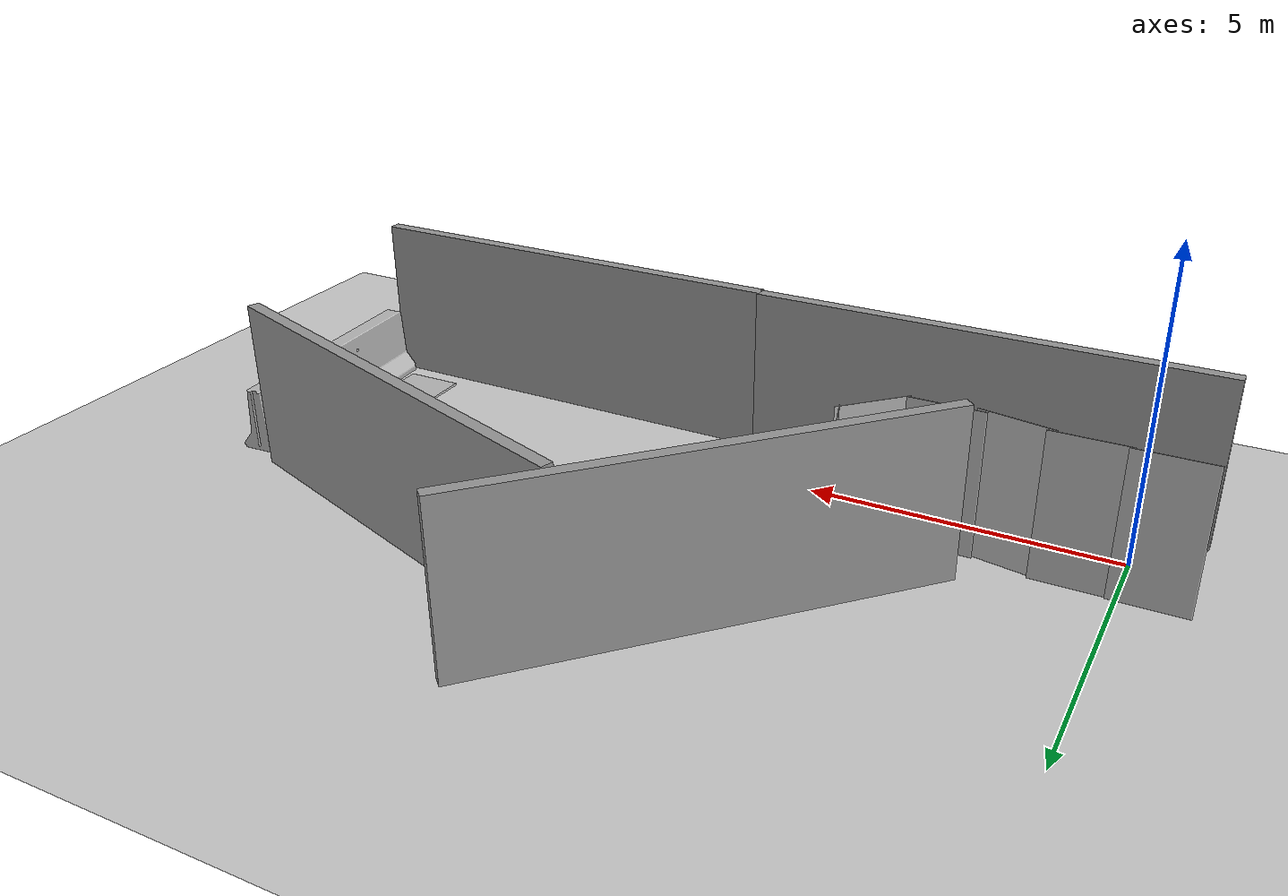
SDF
<sdf version="1.6">
 <world name="default">
  <light name="sun" type="directional">
   <pose>0 0 10 0 -0 0</pose>
   <diffuse>0.8 0.8 0.8 1</diffuse>
   <specular>0.2 0.2 0.2 1</specular>
   <attenuation>
    <range>1000</range>
    <constant>0.9</constant>
    <linear>0.01</linear>
    <quadratic>0.001</quadratic>
   </attenuation>
   <direction>-0.5 0.1 -0.9</direction>
  </light>
  <model name="ground_plane">
   <static>1</static>
   <link name="link">
    <collision name="collision">
     <geometry><plane><normal>0 0 1</normal><size>100 100</size></plane></geometry>
     <surface>
      <contact><collide_bitmask>65535</collide_bitmask></contact>
      <friction><ode><mu>100</mu><mu2>50</mu2></ode></friction>
     </surface>
    </collision>
    <visual name="visual">
     <cast_shadows>0</cast_shadows>
     <geometry><plane><normal>0 0 1</normal><size>100 100</size></plane></geometry>
     <material>
      <script><uri>file://media/materials/scripts/gazebo.material</uri><name>Gazebo/Grey</name></script>
     </material>
    </visual>
   </link>
  </model>
  <gravity>0 0 -9.8</gravity>
  <magnetic_field>6e-06 2.3e-05 -4.2e-05</magnetic_field>
  <atmosphere type="adiabatic"/>
  <physics name="default_physics" default="0" type="ode">
   <max_step_size>0.001</max_step_size>
   <real_time_factor>1</real_time_factor>
   <real_time_update_rate>1000</real_time_update_rate>
  </physics>
  <scene><ambient>0.4 0.4 0.4 1</ambient><background>0.7 0.7 0.7 1</background><shadows>1</shadows></scene>
  <spherical_coordinates>
   <surface_model>EARTH_WGS84</surface_model>
   <latitude_deg>0</latitude_deg>
   <longitude_deg>0</longitude_deg>
   <elevation>0</elevation>
   <heading_deg>0</heading_deg>
  </spherical_coordinates>
  <model name="cafe_table">
   <static>1</static>
   <link name="link">
    <collision name="surface">
     <pose>0 0 0.755 0 -0 0</pose>
     <geometry><box><size>0.913 0.913 0.04</size></box></geometry>
    </collision>
    <collision name="column">
     <pose>0 0 0.37 0 -0 0</pose>
     <geometry><box><size>0.042 0.042 0.74</size></box></geometry>
    </collision>
    <collision name="base">
     <pose>0 0 0.02 0 -0 0</pose>
     <geometry><box><size>0.56 0.56 0.04</size></box></geometry>
    </collision>
    <visual name="visual">
     <geometry><mesh><uri>model://cafe_table/meshes/cafe_table.dae</uri></mesh></geometry>
    </visual>
   </link>
   <pose>12 1 0 0 -0 0</pose>
  </model>
  <model name="grey_wall">
   <static>1</static>
   <link name="link">
    <pose>0 0 1.4 0 -0 0</pose>
    <collision name="collision"><geometry><box><size>7.5 0.2 2.8</size></box></geometry></collision>
    <visual name="visual">
     <cast_shadows>0</cast_shadows>
     <geometry><box><size>7.5 0.2 2.8</size></box></geometry>
     <material>
      <script>
       <uri>model://grey_wall/materials/scripts</uri>
       <uri>model://grey_wall/materials/textures</uri>
       <name>vrc/grey_wall</name>
      </script>
     </material>
    </visual>
   </link>
   <pose>2.75291 -1.08985 0 0 -0 0</pose>
  </model>
  <model name="grey_wall_clone">
   <static>1</static>
   <link name="link">
    <pose>0 0 1.4 0 -0 0</pose>
    <collision name="collision"><geometry><box><size>7.5 0.2 2.8</size></box></geometry></collision>
    <visual name="visual">
     <cast_shadows>0</cast_shadows>
     <geometry><box><size>7.5 0.2 2.8</size></box></geometry>
     <material>
      <script>
       <uri>model://grey_wall/materials/scripts</uri>
       <uri>model://grey_wall/materials/textures</uri>
       <name>vrc/grey_wall</name>
      </script>
     </material>
    </visual>
   </link>
   <pose>10.2216 -1.15909 0 0 -0 3.13344</pose>
  </model>
  <model name="nist_maze_wall_240">
   <static>1</static>
   <link name="nist__maze_wall_240_link">
    <collision name="collision">
     <geometry>
      <mesh><uri>model://nist_maze_wall_240/meshes/nist_maze_wall_240.dae</uri><scale>1 1 1</scale></mesh>
     </geometry>
    </collision>
    <visual name="visual">
     <geometry>
      <mesh><uri>model://nist_maze_wall_240/meshes/nist_maze_wall_240.dae</uri><scale>1 1 1</scale></mesh>
     </geometry>
    </visual>
   </link>
   <pose>-0.45134 0.409954 0 0 -0 0</pose>
  </model>
  <model name="nist_maze_wall_240_0">
   <static>1</static>
   <link name="nist__maze_wall_240_link">
    <collision name="collision">
     <geometry>
      <mesh><uri>model://nist_maze_wall_240/meshes/nist_maze_wall_240.dae</uri><scale>1 1 1</scale></mesh>
     </geometry>
    </collision>
    <visual name="visual">
     <geometry>
      <mesh><uri>model://nist_maze_wall_240/meshes/nist_maze_wall_240.dae</uri><scale>1 1 1</scale></mesh>
     </geometry>
    </visual>
   </link>
   <pose>0.664319 0.383461 0 0 -0 0</pose>
  </model>
  <model name="nist_maze_wall_240_1">
   <static>1</static>
   <link name="nist__maze_wall_240_link">
    <collision name="collision">
     <geometry>
      <mesh><uri>model://nist_maze_wall_240/meshes/nist_maze_wall_240.dae</uri><scale>1 1 1</scale></mesh>
     </geometry>
    </collision>
    <visual name="visual">
     <geometry>
      <mesh><uri>model://nist_maze_wall_240/meshes/nist_maze_wall_240.dae</uri><scale>1 1 1</scale></mesh>
     </geometry>
    </visual>
   </link>
   <pose>1.60536 0.249326 0 0 0 -0.172368</pose>
  </model>
  <model name="nist_maze_wall_240_2">
   <static>1</static>
   <link name="nist__maze_wall_240_link">
    <collision name="collision">
     <geometry>
      <mesh><uri>model://nist_maze_wall_240/meshes/nist_maze_wall_240.dae</uri><scale>1 1 1</scale></mesh>
     </geometry>
    </collision>
    <visual name="visual">
     <geometry>
      <mesh><uri>model://nist_maze_wall_240/meshes/nist_maze_wall_240.dae</uri><scale>1 1 1</scale></mesh>
     </geometry>
    </visual>
   </link>
   <pose>2.72283 0.223769 0 0 -0 0</pose>
  </model>
  <model name="nist_maze_wall_240_3">
   <static>1</static>
   <link name="nist__maze_wall_240_link">
    <collision name="collision">
     <geometry>
      <mesh><uri>model://nist_maze_wall_240/meshes/nist_maze_wall_240.dae</uri><scale>1 1 1</scale></mesh>
     </geometry>
    </collision>
    <visual name="visual">
     <geometry>
      <mesh><uri>model://nist_maze_wall_240/meshes/nist_maze_wall_240.dae</uri><scale>1 1 1</scale></mesh>
     </geometry>
    </visual>
   </link>
   <pose>4.11258 0.776914 0 0 -0 0.787103</pose>
  </model>
  <model name="nist_maze_wall_240_4">
   <static>1</static>
   <link name="nist__maze_wall_240_link">
    <collision name="collision">
     <geometry>
      <mesh><uri>model://nist_maze_wall_240/meshes/nist_maze_wall_240.dae</uri><scale>1 1 1</scale></mesh>
     </geometry>
    </collision>
    <visual name="visual">
     <geometry>
      <mesh><uri>model://nist_maze_wall_240/meshes/nist_maze_wall_240.dae</uri><scale>1 1 1</scale></mesh>
     </geometry>
    </visual>
   </link>
   <pose>3.32677 1.92843 0 0 0 -1.27729</pose>
  </model>
  <model name="jersey_barrier">
   <static>1</static>
   <link name="link">
    <visual name="visual">
     <geometry><mesh><uri>model://jersey_barrier/meshes/jersey_barrier.dae</uri></mesh></geometry>
    </visual>
    <collision name="upright">
     <pose>0 0 0.5715 0 -0 0</pose>
     <geometry><box><size>4.06542 0.3063 1.143</size></box></geometry>
    </collision>
    <collision name="base">
     <pose>0 0 0.032258 0 -0 0</pose>
     <geometry><box><size>4.06542 0.8107 0.064516</size></box></geometry>
    </collision>
    <collision name="base2">
     <pose>0 0 0.1 0 -0 0</pose>
     <geometry><box><size>4.06542 0.65 0.1</size></box></geometry>
    </collision>
    <collision name="base3">
     <pose>0 0 0.2 0 -0 0</pose>
     <geometry><box><size>4.06542 0.5 0.1</size></box></geometry>
    </collision>
    <collision name="left-angle">
     <pose>0 -0.224 0.2401 0.9 -0 0</pose>
     <geometry><box><size>4.06542 0.5 0.064516</size></box></geometry>
    </collision>
    <collision name="right-angle">
     <pose>0 0.224 0.2401 -0.9 0 0</pose>
     <geometry><box><size>4.06542 0.5 0.064516</size></box></geometry>
    </collision>
   </link>
   <pose>13.9627 0.985985 0 0 0 -1.52192</pose>
  </model>
  <model name="grey_wall_clone_clone">
   <static>1</static>
   <link name="link">
    <pose>0 0 1.4 0 -0 0</pose>
    <collision name="collision"><geometry><box><size>7.5 0.2 2.8</size></box></geometry></collision>
    <visual name="visual">
     <cast_shadows>0</cast_shadows>
     <geometry><box><size>7.5 0.2 2.8</size></box></geometry>
     <material>
      <script>
       <uri>model://grey_wall/materials/scripts</uri>
       <uri>model://grey_wall/materials/textures</uri>
       <name>vrc/grey_wall</name>
      </script>
     </material>
    </visual>
   </link>
   <pose>4.81061 4.16217 -0 0 0 -2.32748</pose>
  </model>
  <model name="grey_wall_clone_clone_clone">
   <static>1</static>
   <link name="link">
    <pose>0 0 1.4 0 -0 0</pose>
    <collision name="collision"><geometry><box><size>7.5 0.2 2.8</size></box></geometry></collision>
    <visual name="visual">
     <cast_shadows>0</cast_shadows>
     <geometry><box><size>7.5 0.2 2.8</size></box></geometry>
     <material>
      <script>
       <uri>model://grey_wall/materials/scripts</uri>
       <uri>model://grey_wall/materials/textures</uri>
       <name>vrc/grey_wall</name>
      </script>
     </material>
    </visual>
   </link>
   <pose>9.92958 4.34401 0 0 0 -0.338084</pose>
  </model>
 </world>
</sdf>
